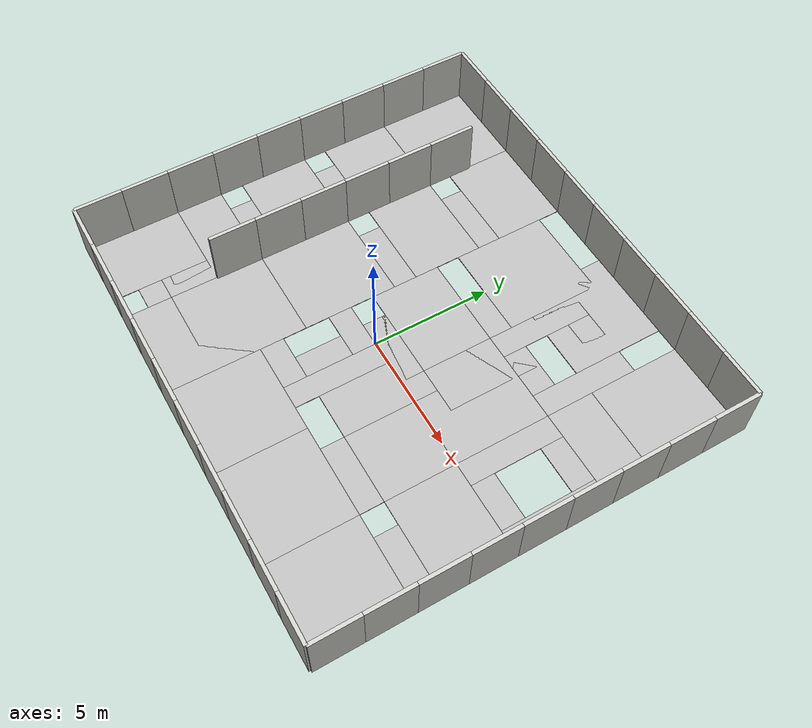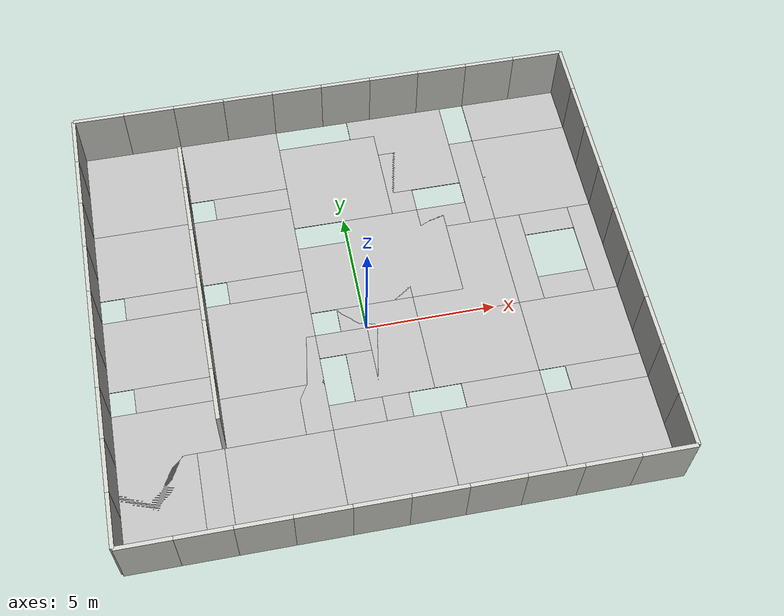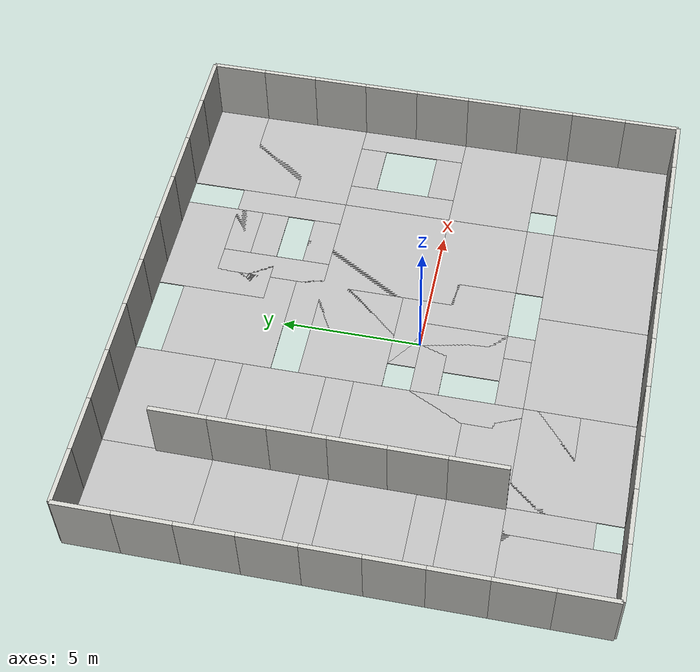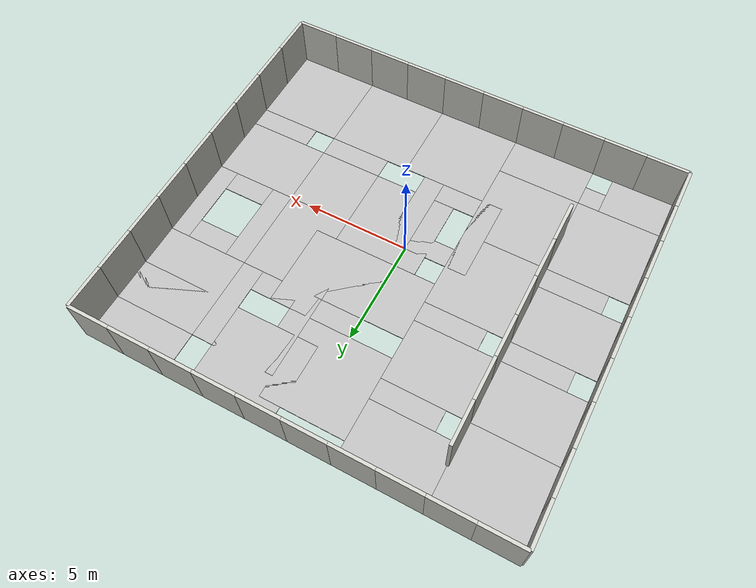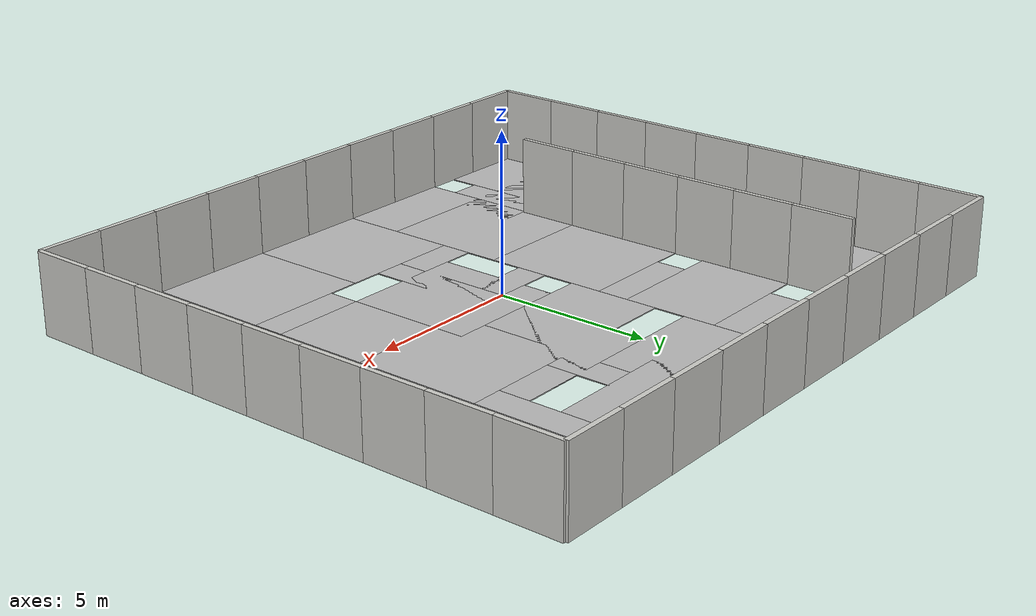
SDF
<sdf version="1.6">
 <world name="default">
  <light name="sun" type="directional">
   <pose>0 0 10 0 -0 0</pose>
   <diffuse>0.8 0.8 0.8 1</diffuse>
   <specular>0.2 0.2 0.2 1</specular>
   <attenuation>
    <range>1000</range>
    <constant>0.9</constant>
    <linear>0.01</linear>
    <quadratic>0.001</quadratic>
   </attenuation>
   <direction>-0.5 0.1 -0.9</direction>
  </light>
  <gravity>0 0 -9.8</gravity>
  <magnetic_field>6e-06 2.3e-05 -4.2e-05</magnetic_field>
  <atmosphere type="adiabatic"/>
  <physics name="default_physics" default="0" type="ode">
   <max_step_size>0.001</max_step_size>
   <real_time_factor>1</real_time_factor>
   <real_time_update_rate>1000</real_time_update_rate>
  </physics>
  <scene><ambient>0.4 0.4 0.4 1</ambient><background>0.7 0.7 0.7 1</background><shadows>1</shadows></scene>
  <spherical_coordinates>
   <surface_model>EARTH_WGS84</surface_model>
   <latitude_deg>0</latitude_deg>
   <longitude_deg>0</longitude_deg>
   <elevation>0</elevation>
   <heading_deg>0</heading_deg>
  </spherical_coordinates>
  <model name="quad_hole_ground_center">
   <static>1</static>
   <link name="ground">
    <pose>1.5 0 0 0 -0 0</pose>
    <collision name="groundc"><geometry><box><size>1 4 0.03</size></box></geometry></collision>
    <visual name="groundv">
     <geometry><box><size>1 4 0.03</size></box></geometry>
     <material>
      <script>
       <uri>model://quad_hole_ground_center/materials/scripts</uri>
       <uri>model://quad_hole_ground_center/materials/textures</uri>
       <name>vrc/quad_hole_ground_center</name>
      </script>
     </material>
    </visual>
   </link>
   <link name="ground2">
    <pose>-1.5 0 0 0 -0 0</pose>
    <collision name="groundc2"><geometry><box><size>1 4 0.03</size></box></geometry></collision>
    <visual name="groundv2">
     <geometry><box><size>1 4 0.03</size></box></geometry>
     <material>
      <script>
       <uri>model://quad_hole_ground_center/materials/scripts</uri>
       <uri>model://quad_hole_ground_center/materials/textures</uri>
       <name>vrc/quad_hole_ground_center</name>
      </script>
     </material>
    </visual>
   </link>
   <link name="ground3">
    <pose>0 1.5 0 0 -0 0</pose>
    <collision name="groundc3"><geometry><box><size>2 1 0.03</size></box></geometry></collision>
    <visual name="groundv3">
     <geometry><box><size>2 1 0.03</size></box></geometry>
     <material>
      <script>
       <uri>model://quad_hole_ground_center/materials/scripts</uri>
       <uri>model://quad_hole_ground_center/materials/textures</uri>
       <name>vrc/quad_hole_ground_center</name>
      </script>
     </material>
    </visual>
   </link>
   <link name="ground4">
    <pose>0 -1.5 0 0 -0 0</pose>
    <collision name="groundc4"><geometry><box><size>2 1 0.03</size></box></geometry></collision>
    <visual name="groundv4">
     <geometry><box><size>2 1 0.03</size></box></geometry>
     <material>
      <script>
       <uri>model://quad_hole_ground_center/materials/scripts</uri>
       <uri>model://quad_hole_ground_center/materials/textures</uri>
       <name>vrc/quad_hole_ground_center</name>
      </script>
     </material>
    </visual>
   </link>
   <pose>-1 -2 0 0 -0 0</pose>
  </model>
  <model name="quad_hole_ground_corner">
   <static>1</static>
   <link name="ground">
    <pose>0 0.5 0 0 -0 0</pose>
    <collision name="groundc"><geometry><box><size>4 3 0.03</size></box></geometry></collision>
    <visual name="groundv">
     <geometry><box><size>4 3 0.03</size></box></geometry>
     <material>
      <script>
       <uri>model://quad_hole_ground_corner/materials/scripts</uri>
       <uri>model://quad_hole_ground_corner/materials/textures</uri>
       <name>vrc/quad_hole_ground_corner</name>
      </script>
     </material>
    </visual>
   </link>
   <link name="ground2">
    <pose>0.5 -1.5 0 0 -0 0</pose>
    <collision name="groundc2"><geometry><box><size>3 1 0.03</size></box></geometry></collision>
    <visual name="groundv2">
     <geometry><box><size>3 1 0.03</size></box></geometry>
     <material>
      <script>
       <uri>model://quad_hole_ground_corner/materials/scripts</uri>
       <uri>model://quad_hole_ground_corner/materials/textures</uri>
       <name>vrc/quad_hole_ground_corner</name>
      </script>
     </material>
    </visual>
   </link>
   <pose>4 -2 0 0 -0 0</pose>
  </model>
  <model name="quad_hole_ground_unit">
   <static>1</static>
   <link name="ground">
    <collision name="groundc"><geometry><box><size>4 4 0.03</size></box></geometry></collision>
    <visual name="groundv">
     <geometry><box><size>4 4 0.03</size></box></geometry>
     <material>
      <script>
       <uri>model://quad_hole_ground_unit/materials/scripts</uri>
       <uri>model://quad_hole_ground_unit/materials/textures</uri>
       <name>vrc/quad_hole_ground_unit</name>
      </script>
     </material>
    </visual>
   </link>
   <pose>4 2 0 0 -0 0</pose>
  </model>
  <model name="quad_hole_ground_center_0">
   <static>1</static>
   <link name="ground">
    <pose>1.5 0 0 0 -0 0</pose>
    <collision name="groundc"><geometry><box><size>1 4 0.03</size></box></geometry></collision>
    <visual name="groundv">
     <geometry><box><size>1 4 0.03</size></box></geometry>
     <material>
      <script>
       <uri>model://quad_hole_ground_center/materials/scripts</uri>
       <uri>model://quad_hole_ground_center/materials/textures</uri>
       <name>vrc/quad_hole_ground_center</name>
      </script>
     </material>
    </visual>
   </link>
   <link name="ground2">
    <pose>-1.5 0 0 0 -0 0</pose>
    <collision name="groundc2"><geometry><box><size>1 4 0.03</size></box></geometry></collision>
    <visual name="groundv2">
     <geometry><box><size>1 4 0.03</size></box></geometry>
     <material>
      <script>
       <uri>model://quad_hole_ground_center/materials/scripts</uri>
       <uri>model://quad_hole_ground_center/materials/textures</uri>
       <name>vrc/quad_hole_ground_center</name>
      </script>
     </material>
    </visual>
   </link>
   <link name="ground3">
    <pose>0 1.5 0 0 -0 0</pose>
    <collision name="groundc3"><geometry><box><size>2 1 0.03</size></box></geometry></collision>
    <visual name="groundv3">
     <geometry><box><size>2 1 0.03</size></box></geometry>
     <material>
      <script>
       <uri>model://quad_hole_ground_center/materials/scripts</uri>
       <uri>model://quad_hole_ground_center/materials/textures</uri>
       <name>vrc/quad_hole_ground_center</name>
      </script>
     </material>
    </visual>
   </link>
   <link name="ground4">
    <pose>0 -1.5 0 0 -0 0</pose>
    <collision name="groundc4"><geometry><box><size>2 1 0.03</size></box></geometry></collision>
    <visual name="groundv4">
     <geometry><box><size>2 1 0.03</size></box></geometry>
     <material>
      <script>
       <uri>model://quad_hole_ground_center/materials/scripts</uri>
       <uri>model://quad_hole_ground_center/materials/textures</uri>
       <name>vrc/quad_hole_ground_center</name>
      </script>
     </material>
    </visual>
   </link>
   <pose>8 2 0 0 -0 0</pose>
  </model>
  <model name="quad_hole_ground_unit_0">
   <static>1</static>
   <link name="ground">
    <collision name="groundc"><geometry><box><size>4 4 0.03</size></box></geometry></collision>
    <visual name="groundv">
     <geometry><box><size>4 4 0.03</size></box></geometry>
     <material>
      <script>
       <uri>model://quad_hole_ground_unit/materials/scripts</uri>
       <uri>model://quad_hole_ground_unit/materials/textures</uri>
       <name>vrc/quad_hole_ground_unit</name>
      </script>
     </material>
    </visual>
   </link>
   <pose>8 6 0 0 -0 0</pose>
  </model>
  <model name="quad_hole_ground_corner_0">
   <static>1</static>
   <link name="ground">
    <pose>0 0.5 0 0 -0 0</pose>
    <collision name="groundc"><geometry><box><size>4 3 0.03</size></box></geometry></collision>
    <visual name="groundv">
     <geometry><box><size>4 3 0.03</size></box></geometry>
     <material>
      <script>
       <uri>model://quad_hole_ground_corner/materials/scripts</uri>
       <uri>model://quad_hole_ground_corner/materials/textures</uri>
       <name>vrc/quad_hole_ground_corner</name>
      </script>
     </material>
    </visual>
   </link>
   <link name="ground2">
    <pose>0.5 -1.5 0 0 -0 0</pose>
    <collision name="groundc2"><geometry><box><size>3 1 0.03</size></box></geometry></collision>
    <visual name="groundv2">
     <geometry><box><size>3 1 0.03</size></box></geometry>
     <material>
      <script>
       <uri>model://quad_hole_ground_corner/materials/scripts</uri>
       <uri>model://quad_hole_ground_corner/materials/textures</uri>
       <name>vrc/quad_hole_ground_corner</name>
      </script>
     </material>
    </visual>
   </link>
   <pose>8 -2 0 0 -0 0</pose>
  </model>
  <model name="quad_hole_ground_center_1">
   <static>1</static>
   <link name="ground">
    <pose>1.5 0 0 0 -0 0</pose>
    <collision name="groundc"><geometry><box><size>1 4 0.03</size></box></geometry></collision>
    <visual name="groundv">
     <geometry><box><size>1 4 0.03</size></box></geometry>
     <material>
      <script>
       <uri>model://quad_hole_ground_center/materials/scripts</uri>
       <uri>model://quad_hole_ground_center/materials/textures</uri>
       <name>vrc/quad_hole_ground_center</name>
      </script>
     </material>
    </visual>
   </link>
   <link name="ground2">
    <pose>-1.5 0 0 0 -0 0</pose>
    <collision name="groundc2"><geometry><box><size>1 4 0.03</size></box></geometry></collision>
    <visual name="groundv2">
     <geometry><box><size>1 4 0.03</size></box></geometry>
     <material>
      <script>
       <uri>model://quad_hole_ground_center/materials/scripts</uri>
       <uri>model://quad_hole_ground_center/materials/textures</uri>
       <name>vrc/quad_hole_ground_center</name>
      </script>
     </material>
    </visual>
   </link>
   <link name="ground3">
    <pose>0 1.5 0 0 -0 0</pose>
    <collision name="groundc3"><geometry><box><size>2 1 0.03</size></box></geometry></collision>
    <visual name="groundv3">
     <geometry><box><size>2 1 0.03</size></box></geometry>
     <material>
      <script>
       <uri>model://quad_hole_ground_center/materials/scripts</uri>
       <uri>model://quad_hole_ground_center/materials/textures</uri>
       <name>vrc/quad_hole_ground_center</name>
      </script>
     </material>
    </visual>
   </link>
   <link name="ground4">
    <pose>0 -1.5 0 0 -0 0</pose>
    <collision name="groundc4"><geometry><box><size>2 1 0.03</size></box></geometry></collision>
    <visual name="groundv4">
     <geometry><box><size>2 1 0.03</size></box></geometry>
     <material>
      <script>
       <uri>model://quad_hole_ground_center/materials/scripts</uri>
       <uri>model://quad_hole_ground_center/materials/textures</uri>
       <name>vrc/quad_hole_ground_center</name>
      </script>
     </material>
    </visual>
   </link>
   <pose>4 6 0 0 -0 0</pose>
  </model>
  <model name="quad_hole_ground_corner_1">
   <static>1</static>
   <link name="ground">
    <pose>0 0.5 0 0 -0 0</pose>
    <collision name="groundc"><geometry><box><size>4 3 0.03</size></box></geometry></collision>
    <visual name="groundv">
     <geometry><box><size>4 3 0.03</size></box></geometry>
     <material>
      <script>
       <uri>model://quad_hole_ground_corner/materials/scripts</uri>
       <uri>model://quad_hole_ground_corner/materials/textures</uri>
       <name>vrc/quad_hole_ground_corner</name>
      </script>
     </material>
    </visual>
   </link>
   <link name="ground2">
    <pose>0.5 -1.5 0 0 -0 0</pose>
    <collision name="groundc2"><geometry><box><size>3 1 0.03</size></box></geometry></collision>
    <visual name="groundv2">
     <geometry><box><size>3 1 0.03</size></box></geometry>
     <material>
      <script>
       <uri>model://quad_hole_ground_corner/materials/scripts</uri>
       <uri>model://quad_hole_ground_corner/materials/textures</uri>
       <name>vrc/quad_hole_ground_corner</name>
      </script>
     </material>
    </visual>
   </link>
   <pose>0 2 0 0 -0 0</pose>
  </model>
  <model name="quad_hole_ground_corner_2">
   <static>1</static>
   <link name="ground">
    <pose>0 0.5 0 0 -0 0</pose>
    <collision name="groundc"><geometry><box><size>4 3 0.03</size></box></geometry></collision>
    <visual name="groundv">
     <geometry><box><size>4 3 0.03</size></box></geometry>
     <material>
      <script>
       <uri>model://quad_hole_ground_corner/materials/scripts</uri>
       <uri>model://quad_hole_ground_corner/materials/textures</uri>
       <name>vrc/quad_hole_ground_corner</name>
      </script>
     </material>
    </visual>
   </link>
   <link name="ground2">
    <pose>0.5 -1.5 0 0 -0 0</pose>
    <collision name="groundc2"><geometry><box><size>3 1 0.03</size></box></geometry></collision>
    <visual name="groundv2">
     <geometry><box><size>3 1 0.03</size></box></geometry>
     <material>
      <script>
       <uri>model://quad_hole_ground_corner/materials/scripts</uri>
       <uri>model://quad_hole_ground_corner/materials/textures</uri>
       <name>vrc/quad_hole_ground_corner</name>
      </script>
     </material>
    </visual>
   </link>
   <pose>-4 4 0 0 -0 0</pose>
  </model>
  <model name="quad_hole_ground_unit_2">
   <static>1</static>
   <link name="ground">
    <collision name="groundc"><geometry><box><size>4 4 0.03</size></box></geometry></collision>
    <visual name="groundv">
     <geometry><box><size>4 4 0.03</size></box></geometry>
     <material>
      <script>
       <uri>model://quad_hole_ground_unit/materials/scripts</uri>
       <uri>model://quad_hole_ground_unit/materials/textures</uri>
       <name>vrc/quad_hole_ground_unit</name>
      </script>
     </material>
    </visual>
   </link>
   <pose>-4 0 0 0 -0 0</pose>
  </model>
  <model name="quad_hole_ground_unit_3">
   <static>1</static>
   <link name="ground">
    <collision name="groundc"><geometry><box><size>4 4 0.03</size></box></geometry></collision>
    <visual name="groundv">
     <geometry><box><size>4 4 0.03</size></box></geometry>
     <material>
      <script>
       <uri>model://quad_hole_ground_unit/materials/scripts</uri>
       <uri>model://quad_hole_ground_unit/materials/textures</uri>
       <name>vrc/quad_hole_ground_unit</name>
      </script>
     </material>
    </visual>
   </link>
   <pose>-4 -4 0 0 -0 0</pose>
  </model>
  <model name="quad_hole_ground_unit_5">
   <static>1</static>
   <link name="ground">
    <collision name="groundc"><geometry><box><size>4 4 0.03</size></box></geometry></collision>
    <visual name="groundv">
     <geometry><box><size>4 4 0.03</size></box></geometry>
     <material>
      <script>
       <uri>model://quad_hole_ground_unit/materials/scripts</uri>
       <uri>model://quad_hole_ground_unit/materials/textures</uri>
       <name>vrc/quad_hole_ground_unit</name>
      </script>
     </material>
    </visual>
   </link>
   <pose>0 7 0 0 -0 0</pose>
  </model>
  <model name="quad_hole_ground_unit_6">
   <static>1</static>
   <link name="ground">
    <collision name="groundc"><geometry><box><size>4 4 0.03</size></box></geometry></collision>
    <visual name="groundv">
     <geometry><box><size>4 4 0.03</size></box></geometry>
     <material>
      <script>
       <uri>model://quad_hole_ground_unit/materials/scripts</uri>
       <uri>model://quad_hole_ground_unit/materials/textures</uri>
       <name>vrc/quad_hole_ground_unit</name>
      </script>
     </material>
    </visual>
   </link>
   <pose>3 8 0 0 -0 0</pose>
  </model>
  <model name="quad_hole_ground_unit_7">
   <static>1</static>
   <link name="ground">
    <collision name="groundc"><geometry><box><size>4 4 0.03</size></box></geometry></collision>
    <visual name="groundv">
     <geometry><box><size>4 4 0.03</size></box></geometry>
     <material>
      <script>
       <uri>model://quad_hole_ground_unit/materials/scripts</uri>
       <uri>model://quad_hole_ground_unit/materials/textures</uri>
       <name>vrc/quad_hole_ground_unit</name>
      </script>
     </material>
    </visual>
   </link>
   <pose>8 8 0 0 -0 0</pose>
  </model>
  <model name="quad_hole_ground_unit_8">
   <static>1</static>
   <link name="ground">
    <collision name="groundc"><geometry><box><size>4 4 0.03</size></box></geometry></collision>
    <visual name="groundv">
     <geometry><box><size>4 4 0.03</size></box></geometry>
     <material>
      <script>
       <uri>model://quad_hole_ground_unit/materials/scripts</uri>
       <uri>model://quad_hole_ground_unit/materials/textures</uri>
       <name>vrc/quad_hole_ground_unit</name>
      </script>
     </material>
    </visual>
   </link>
   <pose>8 -6 0 0 -0 0</pose>
  </model>
  <model name="quad_hole_ground_unit_9">
   <static>1</static>
   <link name="ground">
    <collision name="groundc"><geometry><box><size>4 4 0.03</size></box></geometry></collision>
    <visual name="groundv">
     <geometry><box><size>4 4 0.03</size></box></geometry>
     <material>
      <script>
       <uri>model://quad_hole_ground_unit/materials/scripts</uri>
       <uri>model://quad_hole_ground_unit/materials/textures</uri>
       <name>vrc/quad_hole_ground_unit</name>
      </script>
     </material>
    </visual>
   </link>
   <pose>4 -6 0 0 -0 0</pose>
  </model>
  <model name="quad_hole_ground_unit_10">
   <static>1</static>
   <link name="ground">
    <collision name="groundc"><geometry><box><size>4 4 0.03</size></box></geometry></collision>
    <visual name="groundv">
     <geometry><box><size>4 4 0.03</size></box></geometry>
     <material>
      <script>
       <uri>model://quad_hole_ground_unit/materials/scripts</uri>
       <uri>model://quad_hole_ground_unit/materials/textures</uri>
       <name>vrc/quad_hole_ground_unit</name>
      </script>
     </material>
    </visual>
   </link>
   <pose>0 -6 0 0 -0 0</pose>
  </model>
  <model name="quad_hole_ground_unit_11">
   <static>1</static>
   <link name="ground">
    <collision name="groundc"><geometry><box><size>4 4 0.03</size></box></geometry></collision>
    <visual name="groundv">
     <geometry><box><size>4 4 0.03</size></box></geometry>
     <material>
      <script>
       <uri>model://quad_hole_ground_unit/materials/scripts</uri>
       <uri>model://quad_hole_ground_unit/materials/textures</uri>
       <name>vrc/quad_hole_ground_unit</name>
      </script>
     </material>
    </visual>
   </link>
   <pose>-4 -6 0 0 -0 0</pose>
  </model>
  <model name="quad_hole_ground_unit_1">
   <static>1</static>
   <link name="ground">
    <collision name="groundc"><geometry><box><size>4 4 0.03</size></box></geometry></collision>
    <visual name="groundv">
     <geometry><box><size>4 4 0.03</size></box></geometry>
     <material>
      <script>
       <uri>model://quad_hole_ground_unit/materials/scripts</uri>
       <uri>model://quad_hole_ground_unit/materials/textures</uri>
       <name>vrc/quad_hole_ground_unit</name>
      </script>
     </material>
    </visual>
   </link>
   <pose>-8 8 0 0 -0 0</pose>
  </model>
  <model name="quad_hole_ground_unit_16">
   <static>1</static>
   <link name="ground">
    <collision name="groundc"><geometry><box><size>4 4 0.03</size></box></geometry></collision>
    <visual name="groundv">
     <geometry><box><size>4 4 0.03</size></box></geometry>
     <material>
      <script>
       <uri>model://quad_hole_ground_unit/materials/scripts</uri>
       <uri>model://quad_hole_ground_unit/materials/textures</uri>
       <name>vrc/quad_hole_ground_unit</name>
      </script>
     </material>
    </visual>
   </link>
   <pose>2 3 0 0 -0 0</pose>
  </model>
  <model name="quad_hole_ground_corner_3">
   <static>1</static>
   <link name="ground">
    <pose>0 0.5 0 0 -0 0</pose>
    <collision name="groundc"><geometry><box><size>4 3 0.03</size></box></geometry></collision>
    <visual name="groundv">
     <geometry><box><size>4 3 0.03</size></box></geometry>
     <material>
      <script>
       <uri>model://quad_hole_ground_corner/materials/scripts</uri>
       <uri>model://quad_hole_ground_corner/materials/textures</uri>
       <name>vrc/quad_hole_ground_corner</name>
      </script>
     </material>
    </visual>
   </link>
   <link name="ground2">
    <pose>0.5 -1.5 0 0 -0 0</pose>
    <collision name="groundc2"><geometry><box><size>3 1 0.03</size></box></geometry></collision>
    <visual name="groundv2">
     <geometry><box><size>3 1 0.03</size></box></geometry>
     <material>
      <script>
       <uri>model://quad_hole_ground_corner/materials/scripts</uri>
       <uri>model://quad_hole_ground_corner/materials/textures</uri>
       <name>vrc/quad_hole_ground_corner</name>
      </script>
     </material>
    </visual>
   </link>
   <pose>-4 8 0 0 -0 0</pose>
  </model>
  <model name="quad_hole_ground_unit_4">
   <static>1</static>
   <link name="ground">
    <collision name="groundc"><geometry><box><size>4 4 0.03</size></box></geometry></collision>
    <visual name="groundv">
     <geometry><box><size>4 4 0.03</size></box></geometry>
     <material>
      <script>
       <uri>model://quad_hole_ground_unit/materials/scripts</uri>
       <uri>model://quad_hole_ground_unit/materials/textures</uri>
       <name>vrc/quad_hole_ground_unit</name>
      </script>
     </material>
    </visual>
   </link>
   <pose>1 -1 0 0 -0 0</pose>
  </model>
  <model name="half_wall">
   <link name="Wall_0">
    <collision name="Wall_0_Collision">
     <pose>0 0 1.25 0 -0 0</pose>
     <geometry><box><size>2 0.15 2.5</size></box></geometry>
    </collision>
    <visual name="Wall_0_Visual">
     <pose>0 0 1.25 0 -0 0</pose>
     <geometry><box><size>2 0.15 2.5</size></box></geometry>
     <material>
      <script><uri>file://media/materials/scripts/gazebo.material</uri><name>Gazebo/CeilingTiled</name></script>
      <ambient>1 1 1 1</ambient>
     </material>
    </visual>
   </link>
   <static>1</static>
   <pose>9 10 0 0 -0 0</pose>
  </model>
  <model name="half_wall_0">
   <link name="Wall_0">
    <collision name="Wall_0_Collision">
     <pose>0 0 1.25 0 -0 0</pose>
     <geometry><box><size>2 0.15 2.5</size></box></geometry>
    </collision>
    <visual name="Wall_0_Visual">
     <pose>0 0 1.25 0 -0 0</pose>
     <geometry><box><size>2 0.15 2.5</size></box></geometry>
     <material>
      <script><uri>file://media/materials/scripts/gazebo.material</uri><name>Gazebo/CeilingTiled</name></script>
      <ambient>1 1 1 1</ambient>
     </material>
    </visual>
   </link>
   <static>1</static>
   <pose>7 10 0 0 -0 0</pose>
  </model>
  <model name="half_wall_1">
   <link name="Wall_0">
    <collision name="Wall_0_Collision">
     <pose>0 0 1.25 0 -0 0</pose>
     <geometry><box><size>2 0.15 2.5</size></box></geometry>
    </collision>
    <visual name="Wall_0_Visual">
     <pose>0 0 1.25 0 -0 0</pose>
     <geometry><box><size>2 0.15 2.5</size></box></geometry>
     <material>
      <script><uri>file://media/materials/scripts/gazebo.material</uri><name>Gazebo/CeilingTiled</name></script>
      <ambient>1 1 1 1</ambient>
     </material>
    </visual>
   </link>
   <static>1</static>
   <pose>5 10 0 0 -0 0</pose>
  </model>
  <model name="half_wall_2">
   <link name="Wall_0">
    <collision name="Wall_0_Collision">
     <pose>0 0 1.25 0 -0 0</pose>
     <geometry><box><size>2 0.15 2.5</size></box></geometry>
    </collision>
    <visual name="Wall_0_Visual">
     <pose>0 0 1.25 0 -0 0</pose>
     <geometry><box><size>2 0.15 2.5</size></box></geometry>
     <material>
      <script><uri>file://media/materials/scripts/gazebo.material</uri><name>Gazebo/CeilingTiled</name></script>
      <ambient>1 1 1 1</ambient>
     </material>
    </visual>
   </link>
   <static>1</static>
   <pose>3 10 0 0 -0 0</pose>
  </model>
  <model name="half_wall_3">
   <link name="Wall_0">
    <collision name="Wall_0_Collision">
     <pose>0 0 1.25 0 -0 0</pose>
     <geometry><box><size>2 0.15 2.5</size></box></geometry>
    </collision>
    <visual name="Wall_0_Visual">
     <pose>0 0 1.25 0 -0 0</pose>
     <geometry><box><size>2 0.15 2.5</size></box></geometry>
     <material>
      <script><uri>file://media/materials/scripts/gazebo.material</uri><name>Gazebo/CeilingTiled</name></script>
      <ambient>1 1 1 1</ambient>
     </material>
    </visual>
   </link>
   <static>1</static>
   <pose>1 10 0 0 -0 0</pose>
  </model>
  <model name="half_wall_4">
   <link name="Wall_0">
    <collision name="Wall_0_Collision">
     <pose>0 0 1.25 0 -0 0</pose>
     <geometry><box><size>2 0.15 2.5</size></box></geometry>
    </collision>
    <visual name="Wall_0_Visual">
     <pose>0 0 1.25 0 -0 0</pose>
     <geometry><box><size>2 0.15 2.5</size></box></geometry>
     <material>
      <script><uri>file://media/materials/scripts/gazebo.material</uri><name>Gazebo/CeilingTiled</name></script>
      <ambient>1 1 1 1</ambient>
     </material>
    </visual>
   </link>
   <static>1</static>
   <pose>-1 10 0 0 -0 0</pose>
  </model>
  <model name="half_wall_5">
   <link name="Wall_0">
    <collision name="Wall_0_Collision">
     <pose>0 0 1.25 0 -0 0</pose>
     <geometry><box><size>2 0.15 2.5</size></box></geometry>
    </collision>
    <visual name="Wall_0_Visual">
     <pose>0 0 1.25 0 -0 0</pose>
     <geometry><box><size>2 0.15 2.5</size></box></geometry>
     <material>
      <script><uri>file://media/materials/scripts/gazebo.material</uri><name>Gazebo/CeilingTiled</name></script>
      <ambient>1 1 1 1</ambient>
     </material>
    </visual>
   </link>
   <static>1</static>
   <pose>-3 10 0 0 -0 0</pose>
  </model>
  <model name="half_wall_6">
   <link name="Wall_0">
    <collision name="Wall_0_Collision">
     <pose>0 0 1.25 0 -0 0</pose>
     <geometry><box><size>2 0.15 2.5</size></box></geometry>
    </collision>
    <visual name="Wall_0_Visual">
     <pose>0 0 1.25 0 -0 0</pose>
     <geometry><box><size>2 0.15 2.5</size></box></geometry>
     <material>
      <script><uri>file://media/materials/scripts/gazebo.material</uri><name>Gazebo/CeilingTiled</name></script>
      <ambient>1 1 1 1</ambient>
     </material>
    </visual>
   </link>
   <static>1</static>
   <pose>-5 10 0 0 -0 0</pose>
  </model>
  <model name="half_wall_7">
   <link name="Wall_0">
    <collision name="Wall_0_Collision">
     <pose>0 0 1.25 0 -0 0</pose>
     <geometry><box><size>2 0.15 2.5</size></box></geometry>
    </collision>
    <visual name="Wall_0_Visual">
     <pose>0 0 1.25 0 -0 0</pose>
     <geometry><box><size>2 0.15 2.5</size></box></geometry>
     <material>
      <script><uri>file://media/materials/scripts/gazebo.material</uri><name>Gazebo/CeilingTiled</name></script>
      <ambient>1 1 1 1</ambient>
     </material>
    </visual>
   </link>
   <static>1</static>
   <pose>-7 10 0 0 -0 0</pose>
  </model>
  <model name="half_wall_8">
   <link name="Wall_0">
    <collision name="Wall_0_Collision">
     <pose>0 0 1.25 0 -0 0</pose>
     <geometry><box><size>2 0.15 2.5</size></box></geometry>
    </collision>
    <visual name="Wall_0_Visual">
     <pose>0 0 1.25 0 -0 0</pose>
     <geometry><box><size>2 0.15 2.5</size></box></geometry>
     <material>
      <script><uri>file://media/materials/scripts/gazebo.material</uri><name>Gazebo/CeilingTiled</name></script>
      <ambient>1 1 1 1</ambient>
     </material>
    </visual>
   </link>
   <static>1</static>
   <pose>-9 10 0 0 -0 0</pose>
  </model>
  <model name="half_wall_9">
   <link name="Wall_0">
    <collision name="Wall_0_Collision">
     <pose>0 0 1.25 0 -0 0</pose>
     <geometry><box><size>2 0.15 2.5</size></box></geometry>
    </collision>
    <visual name="Wall_0_Visual">
     <pose>0 0 1.25 0 -0 0</pose>
     <geometry><box><size>2 0.15 2.5</size></box></geometry>
     <material>
      <script><uri>file://media/materials/scripts/gazebo.material</uri><name>Gazebo/CeilingTiled</name></script>
      <ambient>1 1 1 1</ambient>
     </material>
    </visual>
   </link>
   <static>1</static>
   <pose>9 -8 0 0 -0 0</pose>
  </model>
  <model name="half_wall_10">
   <link name="Wall_0">
    <collision name="Wall_0_Collision">
     <pose>0 0 1.25 0 -0 0</pose>
     <geometry><box><size>2 0.15 2.5</size></box></geometry>
    </collision>
    <visual name="Wall_0_Visual">
     <pose>0 0 1.25 0 -0 0</pose>
     <geometry><box><size>2 0.15 2.5</size></box></geometry>
     <material>
      <script><uri>file://media/materials/scripts/gazebo.material</uri><name>Gazebo/CeilingTiled</name></script>
      <ambient>1 1 1 1</ambient>
     </material>
    </visual>
   </link>
   <static>1</static>
   <pose>7 -8 0 0 -0 0</pose>
  </model>
  <model name="half_wall_11">
   <link name="Wall_0">
    <collision name="Wall_0_Collision">
     <pose>0 0 1.25 0 -0 0</pose>
     <geometry><box><size>2 0.15 2.5</size></box></geometry>
    </collision>
    <visual name="Wall_0_Visual">
     <pose>0 0 1.25 0 -0 0</pose>
     <geometry><box><size>2 0.15 2.5</size></box></geometry>
     <material>
      <script><uri>file://media/materials/scripts/gazebo.material</uri><name>Gazebo/CeilingTiled</name></script>
      <ambient>1 1 1 1</ambient>
     </material>
    </visual>
   </link>
   <static>1</static>
   <pose>5 -8 0 0 -0 0</pose>
  </model>
  <model name="half_wall_12">
   <link name="Wall_0">
    <collision name="Wall_0_Collision">
     <pose>0 0 1.25 0 -0 0</pose>
     <geometry><box><size>2 0.15 2.5</size></box></geometry>
    </collision>
    <visual name="Wall_0_Visual">
     <pose>0 0 1.25 0 -0 0</pose>
     <geometry><box><size>2 0.15 2.5</size></box></geometry>
     <material>
      <script><uri>file://media/materials/scripts/gazebo.material</uri><name>Gazebo/CeilingTiled</name></script>
      <ambient>1 1 1 1</ambient>
     </material>
    </visual>
   </link>
   <static>1</static>
   <pose>3 -8 0 0 -0 0</pose>
  </model>
  <model name="half_wall_13">
   <link name="Wall_0">
    <collision name="Wall_0_Collision">
     <pose>0 0 1.25 0 -0 0</pose>
     <geometry><box><size>2 0.15 2.5</size></box></geometry>
    </collision>
    <visual name="Wall_0_Visual">
     <pose>0 0 1.25 0 -0 0</pose>
     <geometry><box><size>2 0.15 2.5</size></box></geometry>
     <material>
      <script><uri>file://media/materials/scripts/gazebo.material</uri><name>Gazebo/CeilingTiled</name></script>
      <ambient>1 1 1 1</ambient>
     </material>
    </visual>
   </link>
   <static>1</static>
   <pose>1 -8 0 0 -0 0</pose>
  </model>
  <model name="half_wall_14">
   <link name="Wall_0">
    <collision name="Wall_0_Collision">
     <pose>0 0 1.25 0 -0 0</pose>
     <geometry><box><size>2 0.15 2.5</size></box></geometry>
    </collision>
    <visual name="Wall_0_Visual">
     <pose>0 0 1.25 0 -0 0</pose>
     <geometry><box><size>2 0.15 2.5</size></box></geometry>
     <material>
      <script><uri>file://media/materials/scripts/gazebo.material</uri><name>Gazebo/CeilingTiled</name></script>
      <ambient>1 1 1 1</ambient>
     </material>
    </visual>
   </link>
   <static>1</static>
   <pose>-1 -8 0 0 -0 0</pose>
  </model>
  <model name="half_wall_15">
   <link name="Wall_0">
    <collision name="Wall_0_Collision">
     <pose>0 0 1.25 0 -0 0</pose>
     <geometry><box><size>2 0.15 2.5</size></box></geometry>
    </collision>
    <visual name="Wall_0_Visual">
     <pose>0 0 1.25 0 -0 0</pose>
     <geometry><box><size>2 0.15 2.5</size></box></geometry>
     <material>
      <script><uri>file://media/materials/scripts/gazebo.material</uri><name>Gazebo/CeilingTiled</name></script>
      <ambient>1 1 1 1</ambient>
     </material>
    </visual>
   </link>
   <static>1</static>
   <pose>-3 -8 0 0 -0 0</pose>
  </model>
  <model name="half_wall_16">
   <link name="Wall_0">
    <collision name="Wall_0_Collision">
     <pose>0 0 1.25 0 -0 0</pose>
     <geometry><box><size>2 0.15 2.5</size></box></geometry>
    </collision>
    <visual name="Wall_0_Visual">
     <pose>0 0 1.25 0 -0 0</pose>
     <geometry><box><size>2 0.15 2.5</size></box></geometry>
     <material>
      <script><uri>file://media/materials/scripts/gazebo.material</uri><name>Gazebo/CeilingTiled</name></script>
      <ambient>1 1 1 1</ambient>
     </material>
    </visual>
   </link>
   <static>1</static>
   <pose>-5 -8 0 0 -0 0</pose>
  </model>
  <model name="half_wall_17">
   <link name="Wall_0">
    <collision name="Wall_0_Collision">
     <pose>0 0 1.25 0 -0 0</pose>
     <geometry><box><size>2 0.15 2.5</size></box></geometry>
    </collision>
    <visual name="Wall_0_Visual">
     <pose>0 0 1.25 0 -0 0</pose>
     <geometry><box><size>2 0.15 2.5</size></box></geometry>
     <material>
      <script><uri>file://media/materials/scripts/gazebo.material</uri><name>Gazebo/CeilingTiled</name></script>
      <ambient>1 1 1 1</ambient>
     </material>
    </visual>
   </link>
   <static>1</static>
   <pose>-7 -8 0 0 -0 0</pose>
  </model>
  <model name="half_wall_18">
   <link name="Wall_0">
    <collision name="Wall_0_Collision">
     <pose>0 0 1.25 0 -0 0</pose>
     <geometry><box><size>2 0.15 2.5</size></box></geometry>
    </collision>
    <visual name="Wall_0_Visual">
     <pose>0 0 1.25 0 -0 0</pose>
     <geometry><box><size>2 0.15 2.5</size></box></geometry>
     <material>
      <script><uri>file://media/materials/scripts/gazebo.material</uri><name>Gazebo/CeilingTiled</name></script>
      <ambient>1 1 1 1</ambient>
     </material>
    </visual>
   </link>
   <static>1</static>
   <pose>-9 -8 0 0 -0 0</pose>
  </model>
  <model name="half_wall_19">
   <link name="Wall_0">
    <collision name="Wall_0_Collision">
     <pose>0 0 1.25 0 -0 0</pose>
     <geometry><box><size>2 0.15 2.5</size></box></geometry>
    </collision>
    <visual name="Wall_0_Visual">
     <pose>0 0 1.25 0 -0 0</pose>
     <geometry><box><size>2 0.15 2.5</size></box></geometry>
     <material>
      <script><uri>file://media/materials/scripts/gazebo.material</uri><name>Gazebo/CeilingTiled</name></script>
      <ambient>1 1 1 1</ambient>
     </material>
    </visual>
   </link>
   <static>1</static>
   <pose>-10 9 0 0 0 -1.5708</pose>
  </model>
  <model name="half_wall_19_clone">
   <link name="Wall_0">
    <collision name="Wall_0_Collision">
     <pose>0 0 1.25 0 -0 0</pose>
     <geometry><box><size>2 0.15 2.5</size></box></geometry>
    </collision>
    <visual name="Wall_0_Visual">
     <pose>0 0 1.25 0 -0 0</pose>
     <geometry><box><size>2 0.15 2.5</size></box></geometry>
     <material>
      <script><uri>file://media/materials/scripts/gazebo.material</uri><name>Gazebo/CeilingTiled</name></script>
      <ambient>1 1 1 1</ambient>
     </material>
    </visual>
   </link>
   <static>1</static>
   <pose>-6 7 0 0 0 -1.5708</pose>
  </model>
  <model name="half_wall_19_clone_0">
   <link name="Wall_0">
    <collision name="Wall_0_Collision">
     <pose>0 0 1.25 0 -0 0</pose>
     <geometry><box><size>2 0.15 2.5</size></box></geometry>
    </collision>
    <visual name="Wall_0_Visual">
     <pose>0 0 1.25 0 -0 0</pose>
     <geometry><box><size>2 0.15 2.5</size></box></geometry>
     <material>
      <script><uri>file://media/materials/scripts/gazebo.material</uri><name>Gazebo/CeilingTiled</name></script>
      <ambient>1 1 1 1</ambient>
     </material>
    </visual>
   </link>
   <static>1</static>
   <pose>-6 5 0 0 0 -1.5708</pose>
  </model>
  <model name="half_wall_19_clone_1">
   <link name="Wall_0">
    <collision name="Wall_0_Collision">
     <pose>0 0 1.25 0 -0 0</pose>
     <geometry><box><size>2 0.15 2.5</size></box></geometry>
    </collision>
    <visual name="Wall_0_Visual">
     <pose>0 0 1.25 0 -0 0</pose>
     <geometry><box><size>2 0.15 2.5</size></box></geometry>
     <material>
      <script><uri>file://media/materials/scripts/gazebo.material</uri><name>Gazebo/CeilingTiled</name></script>
      <ambient>1 1 1 1</ambient>
     </material>
    </visual>
   </link>
   <static>1</static>
   <pose>-6 3 0 0 0 -1.5708</pose>
  </model>
  <model name="half_wall_19_clone_2">
   <link name="Wall_0">
    <collision name="Wall_0_Collision">
     <pose>0 0 1.25 0 -0 0</pose>
     <geometry><box><size>2 0.15 2.5</size></box></geometry>
    </collision>
    <visual name="Wall_0_Visual">
     <pose>0 0 1.25 0 -0 0</pose>
     <geometry><box><size>2 0.15 2.5</size></box></geometry>
     <material>
      <script><uri>file://media/materials/scripts/gazebo.material</uri><name>Gazebo/CeilingTiled</name></script>
      <ambient>1 1 1 1</ambient>
     </material>
    </visual>
   </link>
   <static>1</static>
   <pose>-6 1 0 0 0 -1.5708</pose>
  </model>
  <model name="half_wall_19_clone_3">
   <link name="Wall_0">
    <collision name="Wall_0_Collision">
     <pose>0 0 1.25 0 -0 0</pose>
     <geometry><box><size>2 0.15 2.5</size></box></geometry>
    </collision>
    <visual name="Wall_0_Visual">
     <pose>0 0 1.25 0 -0 0</pose>
     <geometry><box><size>2 0.15 2.5</size></box></geometry>
     <material>
      <script><uri>file://media/materials/scripts/gazebo.material</uri><name>Gazebo/CeilingTiled</name></script>
      <ambient>1 1 1 1</ambient>
     </material>
    </visual>
   </link>
   <static>1</static>
   <pose>-6 -1 0 0 0 -1.5708</pose>
  </model>
  <model name="half_wall_19_clone_4">
   <link name="Wall_0">
    <collision name="Wall_0_Collision">
     <pose>0 0 1.25 0 -0 0</pose>
     <geometry><box><size>2 0.15 2.5</size></box></geometry>
    </collision>
    <visual name="Wall_0_Visual">
     <pose>0 0 1.25 0 -0 0</pose>
     <geometry><box><size>2 0.15 2.5</size></box></geometry>
     <material>
      <script><uri>file://media/materials/scripts/gazebo.material</uri><name>Gazebo/CeilingTiled</name></script>
      <ambient>1 1 1 1</ambient>
     </material>
    </visual>
   </link>
   <static>1</static>
   <pose>-6 -3 0 0 0 -1.5708</pose>
  </model>
  <model name="half_wall_19_clone_5">
   <link name="Wall_0">
    <collision name="Wall_0_Collision">
     <pose>0 0 1.25 0 -0 0</pose>
     <geometry><box><size>2 0.15 2.5</size></box></geometry>
    </collision>
    <visual name="Wall_0_Visual">
     <pose>0 0 1.25 0 -0 0</pose>
     <geometry><box><size>2 0.15 2.5</size></box></geometry>
     <material>
      <script><uri>file://media/materials/scripts/gazebo.material</uri><name>Gazebo/CeilingTiled</name></script>
      <ambient>1 1 1 1</ambient>
     </material>
    </visual>
   </link>
   <static>1</static>
   <pose>-10 -5 0 0 0 -1.5708</pose>
  </model>
  <model name="half_wall_19_clone_6">
   <link name="Wall_0">
    <collision name="Wall_0_Collision">
     <pose>0 0 1.25 0 -0 0</pose>
     <geometry><box><size>2 0.15 2.5</size></box></geometry>
    </collision>
    <visual name="Wall_0_Visual">
     <pose>0 0 1.25 0 -0 0</pose>
     <geometry><box><size>2 0.15 2.5</size></box></geometry>
     <material>
      <script><uri>file://media/materials/scripts/gazebo.material</uri><name>Gazebo/CeilingTiled</name></script>
      <ambient>1 1 1 1</ambient>
     </material>
    </visual>
   </link>
   <static>1</static>
   <pose>10 9 0 0 0 -1.5708</pose>
  </model>
  <model name="half_wall_19_clone_7">
   <link name="Wall_0">
    <collision name="Wall_0_Collision">
     <pose>0 0 1.25 0 -0 0</pose>
     <geometry><box><size>2 0.15 2.5</size></box></geometry>
    </collision>
    <visual name="Wall_0_Visual">
     <pose>0 0 1.25 0 -0 0</pose>
     <geometry><box><size>2 0.15 2.5</size></box></geometry>
     <material>
      <script><uri>file://media/materials/scripts/gazebo.material</uri><name>Gazebo/CeilingTiled</name></script>
      <ambient>1 1 1 1</ambient>
     </material>
    </visual>
   </link>
   <static>1</static>
   <pose>10 7 0 0 0 -1.5708</pose>
  </model>
  <model name="half_wall_19_clone_8">
   <link name="Wall_0">
    <collision name="Wall_0_Collision">
     <pose>0 0 1.25 0 -0 0</pose>
     <geometry><box><size>2 0.15 2.5</size></box></geometry>
    </collision>
    <visual name="Wall_0_Visual">
     <pose>0 0 1.25 0 -0 0</pose>
     <geometry><box><size>2 0.15 2.5</size></box></geometry>
     <material>
      <script><uri>file://media/materials/scripts/gazebo.material</uri><name>Gazebo/CeilingTiled</name></script>
      <ambient>1 1 1 1</ambient>
     </material>
    </visual>
   </link>
   <static>1</static>
   <pose>10 5 0 0 0 -1.5708</pose>
  </model>
  <model name="half_wall_19_clone_9">
   <link name="Wall_0">
    <collision name="Wall_0_Collision">
     <pose>0 0 1.25 0 -0 0</pose>
     <geometry><box><size>2 0.15 2.5</size></box></geometry>
    </collision>
    <visual name="Wall_0_Visual">
     <pose>0 0 1.25 0 -0 0</pose>
     <geometry><box><size>2 0.15 2.5</size></box></geometry>
     <material>
      <script><uri>file://media/materials/scripts/gazebo.material</uri><name>Gazebo/CeilingTiled</name></script>
      <ambient>1 1 1 1</ambient>
     </material>
    </visual>
   </link>
   <static>1</static>
   <pose>10 3 0 0 0 -1.5708</pose>
  </model>
  <model name="half_wall_19_clone_10">
   <link name="Wall_0">
    <collision name="Wall_0_Collision">
     <pose>0 0 1.25 0 -0 0</pose>
     <geometry><box><size>2 0.15 2.5</size></box></geometry>
    </collision>
    <visual name="Wall_0_Visual">
     <pose>0 0 1.25 0 -0 0</pose>
     <geometry><box><size>2 0.15 2.5</size></box></geometry>
     <material>
      <script><uri>file://media/materials/scripts/gazebo.material</uri><name>Gazebo/CeilingTiled</name></script>
      <ambient>1 1 1 1</ambient>
     </material>
    </visual>
   </link>
   <static>1</static>
   <pose>10 1 0 0 0 -1.5708</pose>
  </model>
  <model name="half_wall_19_clone_11">
   <link name="Wall_0">
    <collision name="Wall_0_Collision">
     <pose>0 0 1.25 0 -0 0</pose>
     <geometry><box><size>2 0.15 2.5</size></box></geometry>
    </collision>
    <visual name="Wall_0_Visual">
     <pose>0 0 1.25 0 -0 0</pose>
     <geometry><box><size>2 0.15 2.5</size></box></geometry>
     <material>
      <script><uri>file://media/materials/scripts/gazebo.material</uri><name>Gazebo/CeilingTiled</name></script>
      <ambient>1 1 1 1</ambient>
     </material>
    </visual>
   </link>
   <static>1</static>
   <pose>10 -1 0 0 0 -1.5708</pose>
  </model>
  <model name="half_wall_19_clone_12">
   <link name="Wall_0">
    <collision name="Wall_0_Collision">
     <pose>0 0 1.25 0 -0 0</pose>
     <geometry><box><size>2 0.15 2.5</size></box></geometry>
    </collision>
    <visual name="Wall_0_Visual">
     <pose>0 0 1.25 0 -0 0</pose>
     <geometry><box><size>2 0.15 2.5</size></box></geometry>
     <material>
      <script><uri>file://media/materials/scripts/gazebo.material</uri><name>Gazebo/CeilingTiled</name></script>
      <ambient>1 1 1 1</ambient>
     </material>
    </visual>
   </link>
   <static>1</static>
   <pose>10 -3 0 0 0 -1.5708</pose>
  </model>
  <model name="half_wall_19_clone_13">
   <link name="Wall_0">
    <collision name="Wall_0_Collision">
     <pose>0 0 1.25 0 -0 0</pose>
     <geometry><box><size>2 0.15 2.5</size></box></geometry>
    </collision>
    <visual name="Wall_0_Visual">
     <pose>0 0 1.25 0 -0 0</pose>
     <geometry><box><size>2 0.15 2.5</size></box></geometry>
     <material>
      <script><uri>file://media/materials/scripts/gazebo.material</uri><name>Gazebo/CeilingTiled</name></script>
      <ambient>1 1 1 1</ambient>
     </material>
    </visual>
   </link>
   <static>1</static>
   <pose>10 -5 0 0 0 -1.5708</pose>
  </model>
  <model name="half_wall_19_clone_14">
   <link name="Wall_0">
    <collision name="Wall_0_Collision">
     <pose>0 0 1.25 0 -0 0</pose>
     <geometry><box><size>2 0.15 2.5</size></box></geometry>
    </collision>
    <visual name="Wall_0_Visual">
     <pose>0 0 1.25 0 -0 0</pose>
     <geometry><box><size>2 0.15 2.5</size></box></geometry>
     <material>
      <script><uri>file://media/materials/scripts/gazebo.material</uri><name>Gazebo/CeilingTiled</name></script>
      <ambient>1 1 1 1</ambient>
     </material>
    </visual>
   </link>
   <static>1</static>
   <pose>10 -7 0 0 0 -1.5708</pose>
  </model>
  <model name="half_wall_19_clone_15">
   <link name="Wall_0">
    <collision name="Wall_0_Collision">
     <pose>0 0 1.25 0 -0 0</pose>
     <geometry><box><size>2 0.15 2.5</size></box></geometry>
    </collision>
    <visual name="Wall_0_Visual">
     <pose>0 0 1.25 0 -0 0</pose>
     <geometry><box><size>2 0.15 2.5</size></box></geometry>
     <material>
      <script><uri>file://media/materials/scripts/gazebo.material</uri><name>Gazebo/CeilingTiled</name></script>
      <ambient>1 1 1 1</ambient>
     </material>
    </visual>
   </link>
   <static>1</static>
   <pose>-10 -3 0 0 0 -1.5708</pose>
  </model>
  <model name="half_wall_19_clone_16">
   <link name="Wall_0">
    <collision name="Wall_0_Collision">
     <pose>0 0 1.25 0 -0 0</pose>
     <geometry><box><size>2 0.15 2.5</size></box></geometry>
    </collision>
    <visual name="Wall_0_Visual">
     <pose>0 0 1.25 0 -0 0</pose>
     <geometry><box><size>2 0.15 2.5</size></box></geometry>
     <material>
      <script><uri>file://media/materials/scripts/gazebo.material</uri><name>Gazebo/CeilingTiled</name></script>
      <ambient>1 1 1 1</ambient>
     </material>
    </visual>
   </link>
   <static>1</static>
   <pose>-10 -1 0 0 0 -1.5708</pose>
  </model>
  <model name="half_wall_19_clone_17">
   <link name="Wall_0">
    <collision name="Wall_0_Collision">
     <pose>0 0 1.25 0 -0 0</pose>
     <geometry><box><size>2 0.15 2.5</size></box></geometry>
    </collision>
    <visual name="Wall_0_Visual">
     <pose>0 0 1.25 0 -0 0</pose>
     <geometry><box><size>2 0.15 2.5</size></box></geometry>
     <material>
      <script><uri>file://media/materials/scripts/gazebo.material</uri><name>Gazebo/CeilingTiled</name></script>
      <ambient>1 1 1 1</ambient>
     </material>
    </visual>
   </link>
   <static>1</static>
   <pose>-10 1 0 0 0 -1.5708</pose>
  </model>
  <model name="half_wall_19_clone_18">
   <link name="Wall_0">
    <collision name="Wall_0_Collision">
     <pose>0 0 1.25 0 -0 0</pose>
     <geometry><box><size>2 0.15 2.5</size></box></geometry>
    </collision>
    <visual name="Wall_0_Visual">
     <pose>0 0 1.25 0 -0 0</pose>
     <geometry><box><size>2 0.15 2.5</size></box></geometry>
     <material>
      <script><uri>file://media/materials/scripts/gazebo.material</uri><name>Gazebo/CeilingTiled</name></script>
      <ambient>1 1 1 1</ambient>
     </material>
    </visual>
   </link>
   <static>1</static>
   <pose>-10 3 0 0 0 -1.5708</pose>
  </model>
  <model name="half_wall_19_clone_19">
   <link name="Wall_0">
    <collision name="Wall_0_Collision">
     <pose>0 0 1.25 0 -0 0</pose>
     <geometry><box><size>2 0.15 2.5</size></box></geometry>
    </collision>
    <visual name="Wall_0_Visual">
     <pose>0 0 1.25 0 -0 0</pose>
     <geometry><box><size>2 0.15 2.5</size></box></geometry>
     <material>
      <script><uri>file://media/materials/scripts/gazebo.material</uri><name>Gazebo/CeilingTiled</name></script>
      <ambient>1 1 1 1</ambient>
     </material>
    </visual>
   </link>
   <static>1</static>
   <pose>-10 5 0 0 0 -1.5708</pose>
  </model>
  <model name="half_wall_19_clone_20">
   <link name="Wall_0">
    <collision name="Wall_0_Collision">
     <pose>0 0 1.25 0 -0 0</pose>
     <geometry><box><size>2 0.15 2.5</size></box></geometry>
    </collision>
    <visual name="Wall_0_Visual">
     <pose>0 0 1.25 0 -0 0</pose>
     <geometry><box><size>2 0.15 2.5</size></box></geometry>
     <material>
      <script><uri>file://media/materials/scripts/gazebo.material</uri><name>Gazebo/CeilingTiled</name></script>
      <ambient>1 1 1 1</ambient>
     </material>
    </visual>
   </link>
   <static>1</static>
   <pose>-10 7 0 0 0 -1.5708</pose>
  </model>
  <model name="half_wall_19_clone_21">
   <link name="Wall_0">
    <collision name="Wall_0_Collision">
     <pose>0 0 1.25 0 -0 0</pose>
     <geometry><box><size>2 0.15 2.5</size></box></geometry>
    </collision>
    <visual name="Wall_0_Visual">
     <pose>0 0 1.25 0 -0 0</pose>
     <geometry><box><size>2 0.15 2.5</size></box></geometry>
     <material>
      <script><uri>file://media/materials/scripts/gazebo.material</uri><name>Gazebo/CeilingTiled</name></script>
      <ambient>1 1 1 1</ambient>
     </material>
    </visual>
   </link>
   <static>1</static>
   <pose>-10 -7 0 0 0 -1.5708</pose>
  </model>
  <model name="quad_hole_ground_corner_4">
   <static>1</static>
   <link name="ground">
    <pose>0 0.5 0 0 -0 0</pose>
    <collision name="groundc"><geometry><box><size>4 3 0.03</size></box></geometry></collision>
    <visual name="groundv">
     <geometry><box><size>4 3 0.03</size></box></geometry>
     <material>
      <script>
       <uri>model://quad_hole_ground_corner/materials/scripts</uri>
       <uri>model://quad_hole_ground_corner/materials/textures</uri>
       <name>vrc/quad_hole_ground_corner</name>
      </script>
     </material>
    </visual>
   </link>
   <link name="ground2">
    <pose>0.5 -1.5 0 0 -0 0</pose>
    <collision name="groundc2"><geometry><box><size>3 1 0.03</size></box></geometry></collision>
    <visual name="groundv2">
     <geometry><box><size>3 1 0.03</size></box></geometry>
     <material>
      <script>
       <uri>model://quad_hole_ground_corner/materials/scripts</uri>
       <uri>model://quad_hole_ground_corner/materials/textures</uri>
       <name>vrc/quad_hole_ground_corner</name>
      </script>
     </material>
    </visual>
   </link>
   <pose>-8 0 0 0 -0 0</pose>
  </model>
  <model name="quad_hole_ground_corner_5">
   <static>1</static>
   <link name="ground">
    <pose>0 0.5 0 0 -0 0</pose>
    <collision name="groundc"><geometry><box><size>4 3 0.03</size></box></geometry></collision>
    <visual name="groundv">
     <geometry><box><size>4 3 0.03</size></box></geometry>
     <material>
      <script>
       <uri>model://quad_hole_ground_corner/materials/scripts</uri>
       <uri>model://quad_hole_ground_corner/materials/textures</uri>
       <name>vrc/quad_hole_ground_corner</name>
      </script>
     </material>
    </visual>
   </link>
   <link name="ground2">
    <pose>0.5 -1.5 0 0 -0 0</pose>
    <collision name="groundc2"><geometry><box><size>3 1 0.03</size></box></geometry></collision>
    <visual name="groundv2">
     <geometry><box><size>3 1 0.03</size></box></geometry>
     <material>
      <script>
       <uri>model://quad_hole_ground_corner/materials/scripts</uri>
       <uri>model://quad_hole_ground_corner/materials/textures</uri>
       <name>vrc/quad_hole_ground_corner</name>
      </script>
     </material>
    </visual>
   </link>
   <pose>-8 4 0 0 -0 0</pose>
  </model>
  <model name="quad_hole_ground_unit_12">
   <static>1</static>
   <link name="ground">
    <collision name="groundc"><geometry><box><size>4 4 0.03</size></box></geometry></collision>
    <visual name="groundv">
     <geometry><box><size>4 4 0.03</size></box></geometry>
     <material>
      <script>
       <uri>model://quad_hole_ground_unit/materials/scripts</uri>
       <uri>model://quad_hole_ground_unit/materials/textures</uri>
       <name>vrc/quad_hole_ground_unit</name>
      </script>
     </material>
    </visual>
   </link>
   <pose>-8 -4 0 0 -0 0</pose>
  </model>
  <model name="quad_hole_ground_corner_6">
   <static>1</static>
   <link name="ground">
    <pose>0 0.5 0 0 -0 0</pose>
    <collision name="groundc"><geometry><box><size>4 3 0.03</size></box></geometry></collision>
    <visual name="groundv">
     <geometry><box><size>4 3 0.03</size></box></geometry>
     <material>
      <script>
       <uri>model://quad_hole_ground_corner/materials/scripts</uri>
       <uri>model://quad_hole_ground_corner/materials/textures</uri>
       <name>vrc/quad_hole_ground_corner</name>
      </script>
     </material>
    </visual>
   </link>
   <link name="ground2">
    <pose>0.5 -1.5 0 0 -0 0</pose>
    <collision name="groundc2"><geometry><box><size>3 1 0.03</size></box></geometry></collision>
    <visual name="groundv2">
     <geometry><box><size>3 1 0.03</size></box></geometry>
     <material>
      <script>
       <uri>model://quad_hole_ground_corner/materials/scripts</uri>
       <uri>model://quad_hole_ground_corner/materials/textures</uri>
       <name>vrc/quad_hole_ground_corner</name>
      </script>
     </material>
    </visual>
   </link>
   <pose>-8 -6 0 0 -0 1.5708</pose>
  </model>
 </world>
</sdf>
